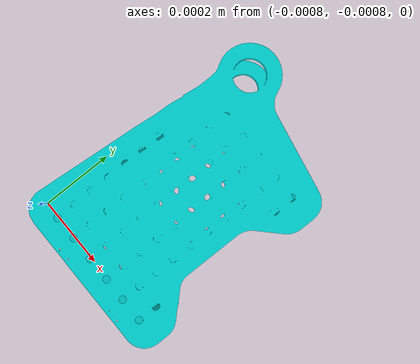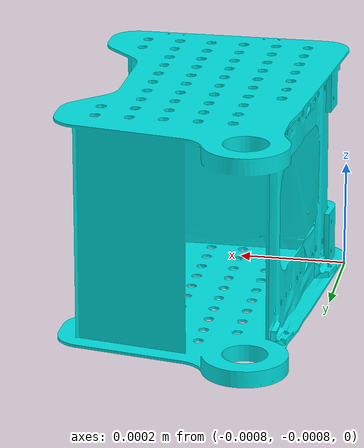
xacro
<?xml version="1.0" ?>
<robot name="pylone">
   <link name="pylone_link">
      <visual>
         <geometry>
            <mesh filename="package://agimus_demo_06_deburring/urdf/meshes/pylone.stl" scale="0.001 0.001 0.001"/>
         </geometry>
         <material name="mat_part0">
            <color rgba="0.0 0.9 0.9 1.0"/>
         </material>
      </visual>
      <collision>
         <geometry>
            <mesh filename="package://agimus_demo_06_deburring/urdf/meshes/pylone.stl" scale="0.001 0.001 0.001"/>
         </geometry>
      </collision>
      <inertial>
         <origin rpy="0 0 0" xyz="0.0 0.0 0.0"/>
         <mass value="0.1"/>
         <inertia ixx="1" ixy="0" ixz="0" iyy="1" iyz="0" izz="1"/>
      </inertial>
   </link>
</robot>
